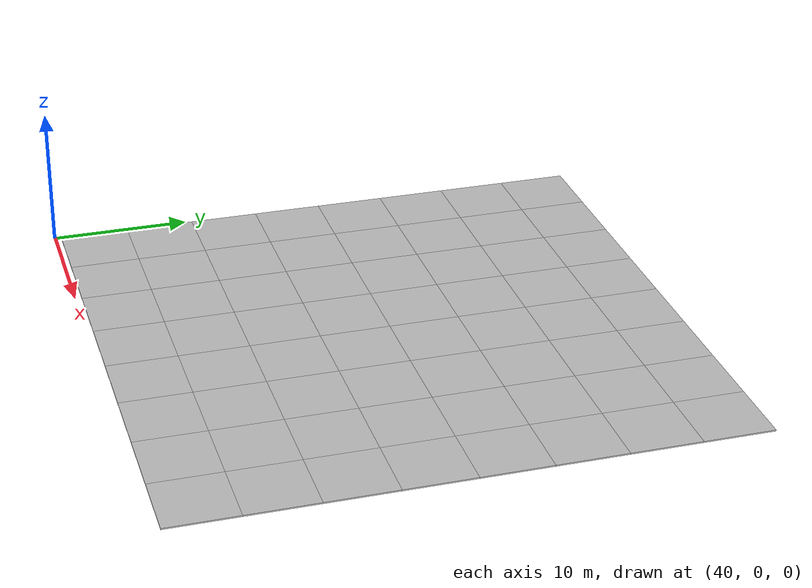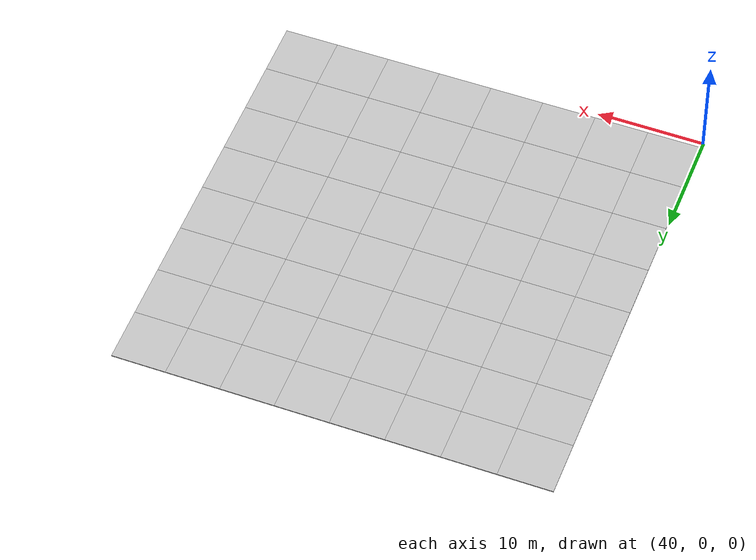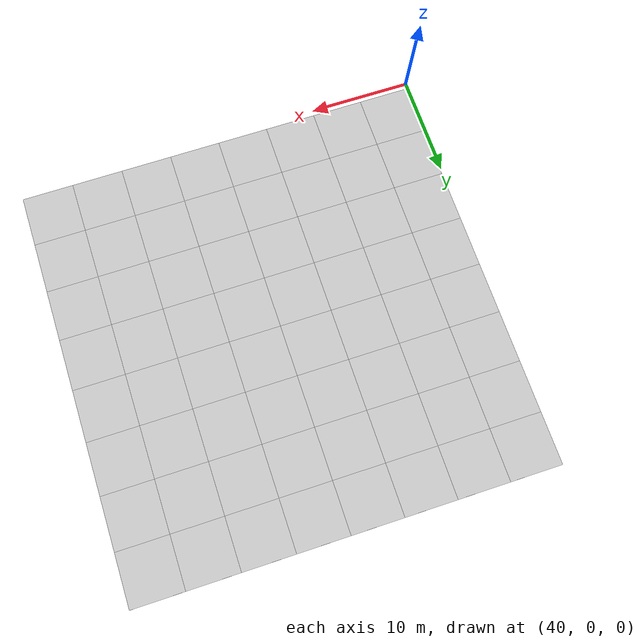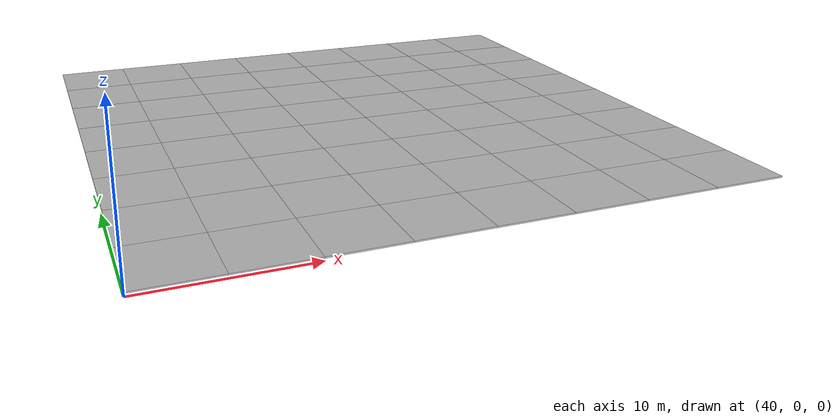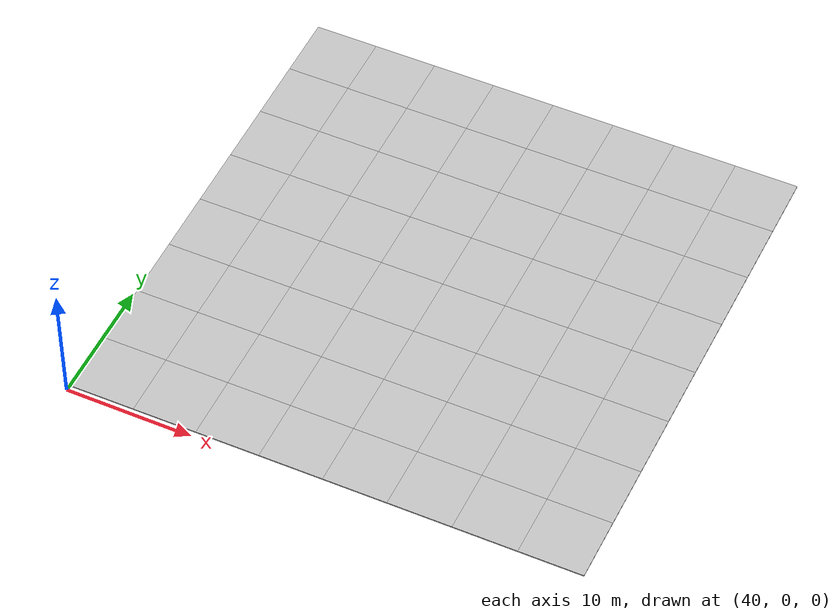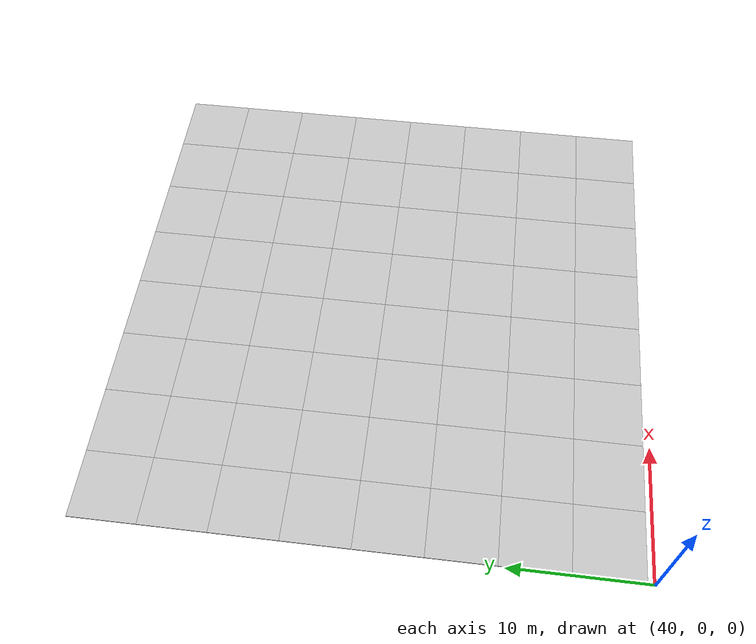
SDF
<sdf version="1.7">
 <world name="default">
  <model name="mud_plane_80x80">
   <model name="mud_plane_40x40_0">
    <model name="mud_plane_20x20">
     <model name="mud_plane">
      <static>1</static>
      <link name="link">
       <collision name="collision"><geometry><box><size>10 10 0.1</size></box></geometry></collision>
       <visual name="visual_1">
        <pose>-2.5 2.5 -0.05 0 -0 0</pose>
        <cast_shadows>0</cast_shadows>
        <geometry><box><size>5 5 0.1</size></box></geometry>
        <material>
         <script>
          <uri>model://mud_plane/materials/scripts</uri>
          <uri>model://mud_plane/materials/textures</uri>
          <name>vrc/mud</name>
         </script>
        </material>
       </visual>
       <visual name="visual_2">
        <pose>2.5 2.5 -0.05 0 -0 0</pose>
        <cast_shadows>0</cast_shadows>
        <geometry><box><size>5 5 0.1</size></box></geometry>
        <material>
         <script>
          <uri>model://mud_plane/materials/scripts</uri>
          <uri>model://mud_plane/materials/textures</uri>
          <name>vrc/mud</name>
         </script>
        </material>
       </visual>
       <visual name="visual_3">
        <pose>2.5 -2.5 -0.05 0 -0 0</pose>
        <cast_shadows>0</cast_shadows>
        <geometry><box><size>5 5 0.1</size></box></geometry>
        <material>
         <script>
          <uri>model://mud_plane/materials/scripts</uri>
          <uri>model://mud_plane/materials/textures</uri>
          <name>vrc/mud</name>
         </script>
        </material>
       </visual>
       <visual name="visual_4">
        <pose>-2.5 -2.5 -0.05 0 -0 0</pose>
        <cast_shadows>0</cast_shadows>
        <geometry><box><size>5 5 0.1</size></box></geometry>
        <material>
         <script>
          <uri>model://mud_plane/materials/scripts</uri>
          <uri>model://mud_plane/materials/textures</uri>
          <name>vrc/mud</name>
         </script>
        </material>
       </visual>
      </link>
      <pose>-4.99986 -4.99991 0 0 -0 0</pose>
     </model>
     <model name="mud_plane_0">
      <static>1</static>
      <link name="link">
       <collision name="collision"><geometry><box><size>10 10 0.1</size></box></geometry></collision>
       <visual name="visual_1">
        <pose>-2.5 2.5 -0.05 0 -0 0</pose>
        <cast_shadows>0</cast_shadows>
        <geometry><box><size>5 5 0.1</size></box></geometry>
        <material>
         <script>
          <uri>model://mud_plane/materials/scripts</uri>
          <uri>model://mud_plane/materials/textures</uri>
          <name>vrc/mud</name>
         </script>
        </material>
       </visual>
       <visual name="visual_2">
        <pose>2.5 2.5 -0.05 0 -0 0</pose>
        <cast_shadows>0</cast_shadows>
        <geometry><box><size>5 5 0.1</size></box></geometry>
        <material>
         <script>
          <uri>model://mud_plane/materials/scripts</uri>
          <uri>model://mud_plane/materials/textures</uri>
          <name>vrc/mud</name>
         </script>
        </material>
       </visual>
       <visual name="visual_3">
        <pose>2.5 -2.5 -0.05 0 -0 0</pose>
        <cast_shadows>0</cast_shadows>
        <geometry><box><size>5 5 0.1</size></box></geometry>
        <material>
         <script>
          <uri>model://mud_plane/materials/scripts</uri>
          <uri>model://mud_plane/materials/textures</uri>
          <name>vrc/mud</name>
         </script>
        </material>
       </visual>
       <visual name="visual_4">
        <pose>-2.5 -2.5 -0.05 0 -0 0</pose>
        <cast_shadows>0</cast_shadows>
        <geometry><box><size>5 5 0.1</size></box></geometry>
        <material>
         <script>
          <uri>model://mud_plane/materials/scripts</uri>
          <uri>model://mud_plane/materials/textures</uri>
          <name>vrc/mud</name>
         </script>
        </material>
       </visual>
      </link>
      <pose>-4.99946 4.99954 0 0 -0 0</pose>
     </model>
     <model name="mud_plane_1">
      <static>1</static>
      <link name="link">
       <collision name="collision"><geometry><box><size>10 10 0.1</size></box></geometry></collision>
       <visual name="visual_1">
        <pose>-2.5 2.5 -0.05 0 -0 0</pose>
        <cast_shadows>0</cast_shadows>
        <geometry><box><size>5 5 0.1</size></box></geometry>
        <material>
         <script>
          <uri>model://mud_plane/materials/scripts</uri>
          <uri>model://mud_plane/materials/textures</uri>
          <name>vrc/mud</name>
         </script>
        </material>
       </visual>
       <visual name="visual_2">
        <pose>2.5 2.5 -0.05 0 -0 0</pose>
        <cast_shadows>0</cast_shadows>
        <geometry><box><size>5 5 0.1</size></box></geometry>
        <material>
         <script>
          <uri>model://mud_plane/materials/scripts</uri>
          <uri>model://mud_plane/materials/textures</uri>
          <name>vrc/mud</name>
         </script>
        </material>
       </visual>
       <visual name="visual_3">
        <pose>2.5 -2.5 -0.05 0 -0 0</pose>
        <cast_shadows>0</cast_shadows>
        <geometry><box><size>5 5 0.1</size></box></geometry>
        <material>
         <script>
          <uri>model://mud_plane/materials/scripts</uri>
          <uri>model://mud_plane/materials/textures</uri>
          <name>vrc/mud</name>
         </script>
        </material>
       </visual>
       <visual name="visual_4">
        <pose>-2.5 -2.5 -0.05 0 -0 0</pose>
        <cast_shadows>0</cast_shadows>
        <geometry><box><size>5 5 0.1</size></box></geometry>
        <material>
         <script>
          <uri>model://mud_plane/materials/scripts</uri>
          <uri>model://mud_plane/materials/textures</uri>
          <name>vrc/mud</name>
         </script>
        </material>
       </visual>
      </link>
      <pose>4.99964 -4.99949 0 0 -0 0</pose>
     </model>
     <model name="mud_plane_2">
      <static>1</static>
      <link name="link">
       <collision name="collision"><geometry><box><size>10 10 0.1</size></box></geometry></collision>
       <visual name="visual_1">
        <pose>-2.5 2.5 -0.05 0 -0 0</pose>
        <cast_shadows>0</cast_shadows>
        <geometry><box><size>5 5 0.1</size></box></geometry>
        <material>
         <script>
          <uri>model://mud_plane/materials/scripts</uri>
          <uri>model://mud_plane/materials/textures</uri>
          <name>vrc/mud</name>
         </script>
        </material>
       </visual>
       <visual name="visual_2">
        <pose>2.5 2.5 -0.05 0 -0 0</pose>
        <cast_shadows>0</cast_shadows>
        <geometry><box><size>5 5 0.1</size></box></geometry>
        <material>
         <script>
          <uri>model://mud_plane/materials/scripts</uri>
          <uri>model://mud_plane/materials/textures</uri>
          <name>vrc/mud</name>
         </script>
        </material>
       </visual>
       <visual name="visual_3">
        <pose>2.5 -2.5 -0.05 0 -0 0</pose>
        <cast_shadows>0</cast_shadows>
        <geometry><box><size>5 5 0.1</size></box></geometry>
        <material>
         <script>
          <uri>model://mud_plane/materials/scripts</uri>
          <uri>model://mud_plane/materials/textures</uri>
          <name>vrc/mud</name>
         </script>
        </material>
       </visual>
       <visual name="visual_4">
        <pose>-2.5 -2.5 -0.05 0 -0 0</pose>
        <cast_shadows>0</cast_shadows>
        <geometry><box><size>5 5 0.1</size></box></geometry>
        <material>
         <script>
          <uri>model://mud_plane/materials/scripts</uri>
          <uri>model://mud_plane/materials/textures</uri>
          <name>vrc/mud</name>
         </script>
        </material>
       </visual>
      </link>
      <pose>4.99967 4.99986 0 0 -0 0</pose>
     </model>
     <static>0</static>
     <pose>-9.99895 9.99843 0 0 -0 0</pose>
    </model>
    <model name="mud_plane_20x20_0">
     <model name="mud_plane">
      <static>1</static>
      <link name="link">
       <collision name="collision"><geometry><box><size>10 10 0.1</size></box></geometry></collision>
       <visual name="visual_1">
        <pose>-2.5 2.5 -0.05 0 -0 0</pose>
        <cast_shadows>0</cast_shadows>
        <geometry><box><size>5 5 0.1</size></box></geometry>
        <material>
         <script>
          <uri>model://mud_plane/materials/scripts</uri>
          <uri>model://mud_plane/materials/textures</uri>
          <name>vrc/mud</name>
         </script>
        </material>
       </visual>
       <visual name="visual_2">
        <pose>2.5 2.5 -0.05 0 -0 0</pose>
        <cast_shadows>0</cast_shadows>
        <geometry><box><size>5 5 0.1</size></box></geometry>
        <material>
         <script>
          <uri>model://mud_plane/materials/scripts</uri>
          <uri>model://mud_plane/materials/textures</uri>
          <name>vrc/mud</name>
         </script>
        </material>
       </visual>
       <visual name="visual_3">
        <pose>2.5 -2.5 -0.05 0 -0 0</pose>
        <cast_shadows>0</cast_shadows>
        <geometry><box><size>5 5 0.1</size></box></geometry>
        <material>
         <script>
          <uri>model://mud_plane/materials/scripts</uri>
          <uri>model://mud_plane/materials/textures</uri>
          <name>vrc/mud</name>
         </script>
        </material>
       </visual>
       <visual name="visual_4">
        <pose>-2.5 -2.5 -0.05 0 -0 0</pose>
        <cast_shadows>0</cast_shadows>
        <geometry><box><size>5 5 0.1</size></box></geometry>
        <material>
         <script>
          <uri>model://mud_plane/materials/scripts</uri>
          <uri>model://mud_plane/materials/textures</uri>
          <name>vrc/mud</name>
         </script>
        </material>
       </visual>
      </link>
      <pose>-4.99986 -4.99991 0 0 -0 0</pose>
     </model>
     <model name="mud_plane_0">
      <static>1</static>
      <link name="link">
       <collision name="collision"><geometry><box><size>10 10 0.1</size></box></geometry></collision>
       <visual name="visual_1">
        <pose>-2.5 2.5 -0.05 0 -0 0</pose>
        <cast_shadows>0</cast_shadows>
        <geometry><box><size>5 5 0.1</size></box></geometry>
        <material>
         <script>
          <uri>model://mud_plane/materials/scripts</uri>
          <uri>model://mud_plane/materials/textures</uri>
          <name>vrc/mud</name>
         </script>
        </material>
       </visual>
       <visual name="visual_2">
        <pose>2.5 2.5 -0.05 0 -0 0</pose>
        <cast_shadows>0</cast_shadows>
        <geometry><box><size>5 5 0.1</size></box></geometry>
        <material>
         <script>
          <uri>model://mud_plane/materials/scripts</uri>
          <uri>model://mud_plane/materials/textures</uri>
          <name>vrc/mud</name>
         </script>
        </material>
       </visual>
       <visual name="visual_3">
        <pose>2.5 -2.5 -0.05 0 -0 0</pose>
        <cast_shadows>0</cast_shadows>
        <geometry><box><size>5 5 0.1</size></box></geometry>
        <material>
         <script>
          <uri>model://mud_plane/materials/scripts</uri>
          <uri>model://mud_plane/materials/textures</uri>
          <name>vrc/mud</name>
         </script>
        </material>
       </visual>
       <visual name="visual_4">
        <pose>-2.5 -2.5 -0.05 0 -0 0</pose>
        <cast_shadows>0</cast_shadows>
        <geometry><box><size>5 5 0.1</size></box></geometry>
        <material>
         <script>
          <uri>model://mud_plane/materials/scripts</uri>
          <uri>model://mud_plane/materials/textures</uri>
          <name>vrc/mud</name>
         </script>
        </material>
       </visual>
      </link>
      <pose>-4.99946 4.99954 0 0 -0 0</pose>
     </model>
     <model name="mud_plane_1">
      <static>1</static>
      <link name="link">
       <collision name="collision"><geometry><box><size>10 10 0.1</size></box></geometry></collision>
       <visual name="visual_1">
        <pose>-2.5 2.5 -0.05 0 -0 0</pose>
        <cast_shadows>0</cast_shadows>
        <geometry><box><size>5 5 0.1</size></box></geometry>
        <material>
         <script>
          <uri>model://mud_plane/materials/scripts</uri>
          <uri>model://mud_plane/materials/textures</uri>
          <name>vrc/mud</name>
         </script>
        </material>
       </visual>
       <visual name="visual_2">
        <pose>2.5 2.5 -0.05 0 -0 0</pose>
        <cast_shadows>0</cast_shadows>
        <geometry><box><size>5 5 0.1</size></box></geometry>
        <material>
         <script>
          <uri>model://mud_plane/materials/scripts</uri>
          <uri>model://mud_plane/materials/textures</uri>
          <name>vrc/mud</name>
         </script>
        </material>
       </visual>
       <visual name="visual_3">
        <pose>2.5 -2.5 -0.05 0 -0 0</pose>
        <cast_shadows>0</cast_shadows>
        <geometry><box><size>5 5 0.1</size></box></geometry>
        <material>
         <script>
          <uri>model://mud_plane/materials/scripts</uri>
          <uri>model://mud_plane/materials/textures</uri>
          <name>vrc/mud</name>
         </script>
        </material>
       </visual>
       <visual name="visual_4">
        <pose>-2.5 -2.5 -0.05 0 -0 0</pose>
        <cast_shadows>0</cast_shadows>
        <geometry><box><size>5 5 0.1</size></box></geometry>
        <material>
         <script>
          <uri>model://mud_plane/materials/scripts</uri>
          <uri>model://mud_plane/materials/textures</uri>
          <name>vrc/mud</name>
         </script>
        </material>
       </visual>
      </link>
      <pose>4.99964 -4.99949 0 0 -0 0</pose>
     </model>
     <model name="mud_plane_2">
      <static>1</static>
      <link name="link">
       <collision name="collision"><geometry><box><size>10 10 0.1</size></box></geometry></collision>
       <visual name="visual_1">
        <pose>-2.5 2.5 -0.05 0 -0 0</pose>
        <cast_shadows>0</cast_shadows>
        <geometry><box><size>5 5 0.1</size></box></geometry>
        <material>
         <script>
          <uri>model://mud_plane/materials/scripts</uri>
          <uri>model://mud_plane/materials/textures</uri>
          <name>vrc/mud</name>
         </script>
        </material>
       </visual>
       <visual name="visual_2">
        <pose>2.5 2.5 -0.05 0 -0 0</pose>
        <cast_shadows>0</cast_shadows>
        <geometry><box><size>5 5 0.1</size></box></geometry>
        <material>
         <script>
          <uri>model://mud_plane/materials/scripts</uri>
          <uri>model://mud_plane/materials/textures</uri>
          <name>vrc/mud</name>
         </script>
        </material>
       </visual>
       <visual name="visual_3">
        <pose>2.5 -2.5 -0.05 0 -0 0</pose>
        <cast_shadows>0</cast_shadows>
        <geometry><box><size>5 5 0.1</size></box></geometry>
        <material>
         <script>
          <uri>model://mud_plane/materials/scripts</uri>
          <uri>model://mud_plane/materials/textures</uri>
          <name>vrc/mud</name>
         </script>
        </material>
       </visual>
       <visual name="visual_4">
        <pose>-2.5 -2.5 -0.05 0 -0 0</pose>
        <cast_shadows>0</cast_shadows>
        <geometry><box><size>5 5 0.1</size></box></geometry>
        <material>
         <script>
          <uri>model://mud_plane/materials/scripts</uri>
          <uri>model://mud_plane/materials/textures</uri>
          <name>vrc/mud</name>
         </script>
        </material>
       </visual>
      </link>
      <pose>4.99967 4.99986 0 0 -0 0</pose>
     </model>
     <static>0</static>
     <pose>9.99933 9.9997 0 0 -0 0</pose>
    </model>
    <model name="mud_plane_20x20_1">
     <model name="mud_plane">
      <static>1</static>
      <link name="link">
       <collision name="collision"><geometry><box><size>10 10 0.1</size></box></geometry></collision>
       <visual name="visual_1">
        <pose>-2.5 2.5 -0.05 0 -0 0</pose>
        <cast_shadows>0</cast_shadows>
        <geometry><box><size>5 5 0.1</size></box></geometry>
        <material>
         <script>
          <uri>model://mud_plane/materials/scripts</uri>
          <uri>model://mud_plane/materials/textures</uri>
          <name>vrc/mud</name>
         </script>
        </material>
       </visual>
       <visual name="visual_2">
        <pose>2.5 2.5 -0.05 0 -0 0</pose>
        <cast_shadows>0</cast_shadows>
        <geometry><box><size>5 5 0.1</size></box></geometry>
        <material>
         <script>
          <uri>model://mud_plane/materials/scripts</uri>
          <uri>model://mud_plane/materials/textures</uri>
          <name>vrc/mud</name>
         </script>
        </material>
       </visual>
       <visual name="visual_3">
        <pose>2.5 -2.5 -0.05 0 -0 0</pose>
        <cast_shadows>0</cast_shadows>
        <geometry><box><size>5 5 0.1</size></box></geometry>
        <material>
         <script>
          <uri>model://mud_plane/materials/scripts</uri>
          <uri>model://mud_plane/materials/textures</uri>
          <name>vrc/mud</name>
         </script>
        </material>
       </visual>
       <visual name="visual_4">
        <pose>-2.5 -2.5 -0.05 0 -0 0</pose>
        <cast_shadows>0</cast_shadows>
        <geometry><box><size>5 5 0.1</size></box></geometry>
        <material>
         <script>
          <uri>model://mud_plane/materials/scripts</uri>
          <uri>model://mud_plane/materials/textures</uri>
          <name>vrc/mud</name>
         </script>
        </material>
       </visual>
      </link>
      <pose>-4.99986 -4.99991 0 0 -0 0</pose>
     </model>
     <model name="mud_plane_0">
      <static>1</static>
      <link name="link">
       <collision name="collision"><geometry><box><size>10 10 0.1</size></box></geometry></collision>
       <visual name="visual_1">
        <pose>-2.5 2.5 -0.05 0 -0 0</pose>
        <cast_shadows>0</cast_shadows>
        <geometry><box><size>5 5 0.1</size></box></geometry>
        <material>
         <script>
          <uri>model://mud_plane/materials/scripts</uri>
          <uri>model://mud_plane/materials/textures</uri>
          <name>vrc/mud</name>
         </script>
        </material>
       </visual>
       <visual name="visual_2">
        <pose>2.5 2.5 -0.05 0 -0 0</pose>
        <cast_shadows>0</cast_shadows>
        <geometry><box><size>5 5 0.1</size></box></geometry>
        <material>
         <script>
          <uri>model://mud_plane/materials/scripts</uri>
          <uri>model://mud_plane/materials/textures</uri>
          <name>vrc/mud</name>
         </script>
        </material>
       </visual>
       <visual name="visual_3">
        <pose>2.5 -2.5 -0.05 0 -0 0</pose>
        <cast_shadows>0</cast_shadows>
        <geometry><box><size>5 5 0.1</size></box></geometry>
        <material>
         <script>
          <uri>model://mud_plane/materials/scripts</uri>
          <uri>model://mud_plane/materials/textures</uri>
          <name>vrc/mud</name>
         </script>
        </material>
       </visual>
       <visual name="visual_4">
        <pose>-2.5 -2.5 -0.05 0 -0 0</pose>
        <cast_shadows>0</cast_shadows>
        <geometry><box><size>5 5 0.1</size></box></geometry>
        <material>
         <script>
          <uri>model://mud_plane/materials/scripts</uri>
          <uri>model://mud_plane/materials/textures</uri>
          <name>vrc/mud</name>
         </script>
        </material>
       </visual>
      </link>
      <pose>-4.99946 4.99954 0 0 -0 0</pose>
     </model>
     <model name="mud_plane_1">
      <static>1</static>
      <link name="link">
       <collision name="collision"><geometry><box><size>10 10 0.1</size></box></geometry></collision>
       <visual name="visual_1">
        <pose>-2.5 2.5 -0.05 0 -0 0</pose>
        <cast_shadows>0</cast_shadows>
        <geometry><box><size>5 5 0.1</size></box></geometry>
        <material>
         <script>
          <uri>model://mud_plane/materials/scripts</uri>
          <uri>model://mud_plane/materials/textures</uri>
          <name>vrc/mud</name>
         </script>
        </material>
       </visual>
       <visual name="visual_2">
        <pose>2.5 2.5 -0.05 0 -0 0</pose>
        <cast_shadows>0</cast_shadows>
        <geometry><box><size>5 5 0.1</size></box></geometry>
        <material>
         <script>
          <uri>model://mud_plane/materials/scripts</uri>
          <uri>model://mud_plane/materials/textures</uri>
          <name>vrc/mud</name>
         </script>
        </material>
       </visual>
       <visual name="visual_3">
        <pose>2.5 -2.5 -0.05 0 -0 0</pose>
        <cast_shadows>0</cast_shadows>
        <geometry><box><size>5 5 0.1</size></box></geometry>
        <material>
         <script>
          <uri>model://mud_plane/materials/scripts</uri>
          <uri>model://mud_plane/materials/textures</uri>
          <name>vrc/mud</name>
         </script>
        </material>
       </visual>
       <visual name="visual_4">
        <pose>-2.5 -2.5 -0.05 0 -0 0</pose>
        <cast_shadows>0</cast_shadows>
        <geometry><box><size>5 5 0.1</size></box></geometry>
        <material>
         <script>
          <uri>model://mud_plane/materials/scripts</uri>
          <uri>model://mud_plane/materials/textures</uri>
          <name>vrc/mud</name>
         </script>
        </material>
       </visual>
      </link>
      <pose>4.99964 -4.99949 0 0 -0 0</pose>
     </model>
     <model name="mud_plane_2">
      <static>1</static>
      <link name="link">
       <collision name="collision"><geometry><box><size>10 10 0.1</size></box></geometry></collision>
       <visual name="visual_1">
        <pose>-2.5 2.5 -0.05 0 -0 0</pose>
        <cast_shadows>0</cast_shadows>
        <geometry><box><size>5 5 0.1</size></box></geometry>
        <material>
         <script>
          <uri>model://mud_plane/materials/scripts</uri>
          <uri>model://mud_plane/materials/textures</uri>
          <name>vrc/mud</name>
         </script>
        </material>
       </visual>
       <visual name="visual_2">
        <pose>2.5 2.5 -0.05 0 -0 0</pose>
        <cast_shadows>0</cast_shadows>
        <geometry><box><size>5 5 0.1</size></box></geometry>
        <material>
         <script>
          <uri>model://mud_plane/materials/scripts</uri>
          <uri>model://mud_plane/materials/textures</uri>
          <name>vrc/mud</name>
         </script>
        </material>
       </visual>
       <visual name="visual_3">
        <pose>2.5 -2.5 -0.05 0 -0 0</pose>
        <cast_shadows>0</cast_shadows>
        <geometry><box><size>5 5 0.1</size></box></geometry>
        <material>
         <script>
          <uri>model://mud_plane/materials/scripts</uri>
          <uri>model://mud_plane/materials/textures</uri>
          <name>vrc/mud</name>
         </script>
        </material>
       </visual>
       <visual name="visual_4">
        <pose>-2.5 -2.5 -0.05 0 -0 0</pose>
        <cast_shadows>0</cast_shadows>
        <geometry><box><size>5 5 0.1</size></box></geometry>
        <material>
         <script>
          <uri>model://mud_plane/materials/scripts</uri>
          <uri>model://mud_plane/materials/textures</uri>
          <name>vrc/mud</name>
         </script>
        </material>
       </visual>
      </link>
      <pose>4.99967 4.99986 0 0 -0 0</pose>
     </model>
     <static>0</static>
     <pose>9.9993 -9.99877 0 0 -0 0</pose>
    </model>
    <model name="mud_plane_20x20_2">
     <model name="mud_plane">
      <static>1</static>
      <link name="link">
       <collision name="collision"><geometry><box><size>10 10 0.1</size></box></geometry></collision>
       <visual name="visual_1">
        <pose>-2.5 2.5 -0.05 0 -0 0</pose>
        <cast_shadows>0</cast_shadows>
        <geometry><box><size>5 5 0.1</size></box></geometry>
        <material>
         <script>
          <uri>model://mud_plane/materials/scripts</uri>
          <uri>model://mud_plane/materials/textures</uri>
          <name>vrc/mud</name>
         </script>
        </material>
       </visual>
       <visual name="visual_2">
        <pose>2.5 2.5 -0.05 0 -0 0</pose>
        <cast_shadows>0</cast_shadows>
        <geometry><box><size>5 5 0.1</size></box></geometry>
        <material>
         <script>
          <uri>model://mud_plane/materials/scripts</uri>
          <uri>model://mud_plane/materials/textures</uri>
          <name>vrc/mud</name>
         </script>
        </material>
       </visual>
       <visual name="visual_3">
        <pose>2.5 -2.5 -0.05 0 -0 0</pose>
        <cast_shadows>0</cast_shadows>
        <geometry><box><size>5 5 0.1</size></box></geometry>
        <material>
         <script>
          <uri>model://mud_plane/materials/scripts</uri>
          <uri>model://mud_plane/materials/textures</uri>
          <name>vrc/mud</name>
         </script>
        </material>
       </visual>
       <visual name="visual_4">
        <pose>-2.5 -2.5 -0.05 0 -0 0</pose>
        <cast_shadows>0</cast_shadows>
        <geometry><box><size>5 5 0.1</size></box></geometry>
        <material>
         <script>
          <uri>model://mud_plane/materials/scripts</uri>
          <uri>model://mud_plane/materials/textures</uri>
          <name>vrc/mud</name>
         </script>
        </material>
       </visual>
      </link>
      <pose>-4.99986 -4.99991 0 0 -0 0</pose>
     </model>
     <model name="mud_plane_0">
      <static>1</static>
      <link name="link">
       <collision name="collision"><geometry><box><size>10 10 0.1</size></box></geometry></collision>
       <visual name="visual_1">
        <pose>-2.5 2.5 -0.05 0 -0 0</pose>
        <cast_shadows>0</cast_shadows>
        <geometry><box><size>5 5 0.1</size></box></geometry>
        <material>
         <script>
          <uri>model://mud_plane/materials/scripts</uri>
          <uri>model://mud_plane/materials/textures</uri>
          <name>vrc/mud</name>
         </script>
        </material>
       </visual>
       <visual name="visual_2">
        <pose>2.5 2.5 -0.05 0 -0 0</pose>
        <cast_shadows>0</cast_shadows>
        <geometry><box><size>5 5 0.1</size></box></geometry>
        <material>
         <script>
          <uri>model://mud_plane/materials/scripts</uri>
          <uri>model://mud_plane/materials/textures</uri>
          <name>vrc/mud</name>
         </script>
        </material>
       </visual>
       <visual name="visual_3">
        <pose>2.5 -2.5 -0.05 0 -0 0</pose>
        <cast_shadows>0</cast_shadows>
        <geometry><box><size>5 5 0.1</size></box></geometry>
        <material>
         <script>
          <uri>model://mud_plane/materials/scripts</uri>
          <uri>model://mud_plane/materials/textures</uri>
          <name>vrc/mud</name>
         </script>
        </material>
       </visual>
       <visual name="visual_4">
        <pose>-2.5 -2.5 -0.05 0 -0 0</pose>
        <cast_shadows>0</cast_shadows>
        <geometry><box><size>5 5 0.1</size></box></geometry>
        <material>
         <script>
          <uri>model://mud_plane/materials/scripts</uri>
          <uri>model://mud_plane/materials/textures</uri>
          <name>vrc/mud</name>
         </script>
        </material>
       </visual>
      </link>
      <pose>-4.99946 4.99954 0 0 -0 0</pose>
     </model>
     <model name="mud_plane_1">
      <static>1</static>
      <link name="link">
       <collision name="collision"><geometry><box><size>10 10 0.1</size></box></geometry></collision>
       <visual name="visual_1">
        <pose>-2.5 2.5 -0.05 0 -0 0</pose>
        <cast_shadows>0</cast_shadows>
        <geometry><box><size>5 5 0.1</size></box></geometry>
        <material>
         <script>
          <uri>model://mud_plane/materials/scripts</uri>
          <uri>model://mud_plane/materials/textures</uri>
          <name>vrc/mud</name>
         </script>
        </material>
       </visual>
       <visual name="visual_2">
        <pose>2.5 2.5 -0.05 0 -0 0</pose>
        <cast_shadows>0</cast_shadows>
        <geometry><box><size>5 5 0.1</size></box></geometry>
        <material>
         <script>
          <uri>model://mud_plane/materials/scripts</uri>
          <uri>model://mud_plane/materials/textures</uri>
          <name>vrc/mud</name>
         </script>
        </material>
       </visual>
       <visual name="visual_3">
        <pose>2.5 -2.5 -0.05 0 -0 0</pose>
        <cast_shadows>0</cast_shadows>
        <geometry><box><size>5 5 0.1</size></box></geometry>
        <material>
         <script>
          <uri>model://mud_plane/materials/scripts</uri>
          <uri>model://mud_plane/materials/textures</uri>
          <name>vrc/mud</name>
         </script>
        </material>
       </visual>
       <visual name="visual_4">
        <pose>-2.5 -2.5 -0.05 0 -0 0</pose>
        <cast_shadows>0</cast_shadows>
        <geometry><box><size>5 5 0.1</size></box></geometry>
        <material>
         <script>
          <uri>model://mud_plane/materials/scripts</uri>
          <uri>model://mud_plane/materials/textures</uri>
          <name>vrc/mud</name>
         </script>
        </material>
       </visual>
      </link>
      <pose>4.99964 -4.99949 0 0 -0 0</pose>
     </model>
     <model name="mud_plane_2">
      <static>1</static>
      <link name="link">
       <collision name="collision"><geometry><box><size>10 10 0.1</size></box></geometry></collision>
       <visual name="visual_1">
        <pose>-2.5 2.5 -0.05 0 -0 0</pose>
        <cast_shadows>0</cast_shadows>
        <geometry><box><size>5 5 0.1</size></box></geometry>
        <material>
         <script>
          <uri>model://mud_plane/materials/scripts</uri>
          <uri>model://mud_plane/materials/textures</uri>
          <name>vrc/mud</name>
         </script>
        </material>
       </visual>
       <visual name="visual_2">
        <pose>2.5 2.5 -0.05 0 -0 0</pose>
        <cast_shadows>0</cast_shadows>
        <geometry><box><size>5 5 0.1</size></box></geometry>
        <material>
         <script>
          <uri>model://mud_plane/materials/scripts</uri>
          <uri>model://mud_plane/materials/textures</uri>
          <name>vrc/mud</name>
         </script>
        </material>
       </visual>
       <visual name="visual_3">
        <pose>2.5 -2.5 -0.05 0 -0 0</pose>
        <cast_shadows>0</cast_shadows>
        <geometry><box><size>5 5 0.1</size></box></geometry>
        <material>
         <script>
          <uri>model://mud_plane/materials/scripts</uri>
          <uri>model://mud_plane/materials/textures</uri>
          <name>vrc/mud</name>
         </script>
        </material>
       </visual>
       <visual name="visual_4">
        <pose>-2.5 -2.5 -0.05 0 -0 0</pose>
        <cast_shadows>0</cast_shadows>
        <geometry><box><size>5 5 0.1</size></box></geometry>
        <material>
         <script>
          <uri>model://mud_plane/materials/scripts</uri>
          <uri>model://mud_plane/materials/textures</uri>
          <name>vrc/mud</name>
         </script>
        </material>
       </visual>
      </link>
      <pose>4.99967 4.99986 0 0 -0 0</pose>
     </model>
     <static>0</static>
     <pose>-9.99969 -9.99935 0 0 -0 0</pose>
    </model>
    <static>0</static>
    <pose>19.9985 -19.998 0 0 -0 0</pose>
   </model>
   <static>0</static>
   <pose>40.1011 40.4629 0 0 -0 0</pose>
  </model>
 </world>
</sdf>
